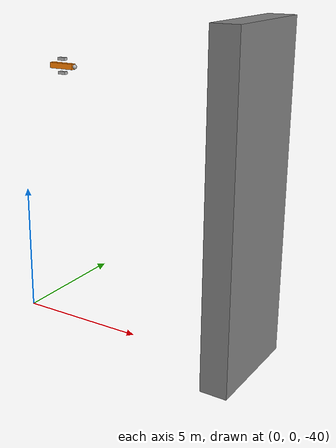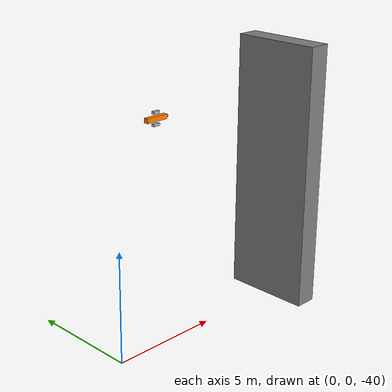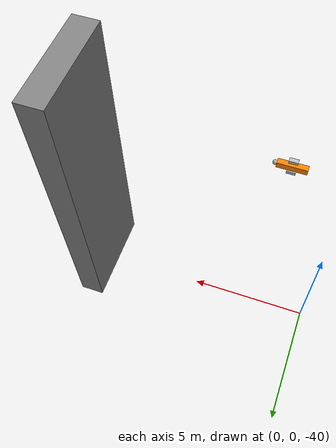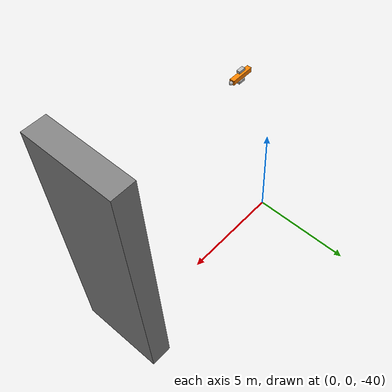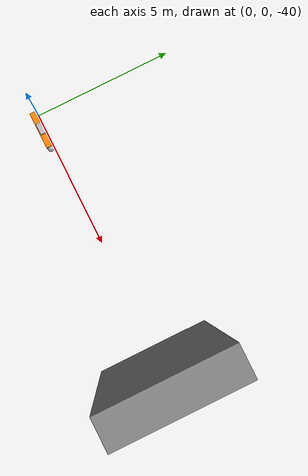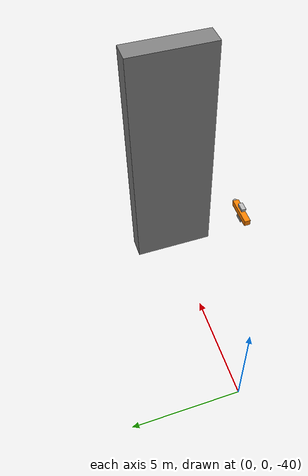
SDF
<sdf version="1.7"><world name="uuv_twin_axial">
<physics name="bench" type="ode"><max_step_size>0.05</max_step_size><real_time_factor>1</real_time_factor></physics>
<spherical_coordinates><surface_model>EARTH_WGS84</surface_model><world_frame_orientation>ENU</world_frame_orientation><latitude_deg>0</latitude_deg><longitude_deg>0</longitude_deg><elevation>0</elevation><heading_deg>0</heading_deg></spherical_coordinates>
<gravity>0 0 0</gravity><scene><ambient>1 1 1</ambient><background>0.15 0.2 0.3</background></scene>
<plugin filename="physics_interface_plugin" name="lotusim::gazebo::PhysicsInterfacePlugin" />
<plugin filename="multi_agent_system_plugin" name="lotusim::gazebo::MultiAgentSystem" />
<plugin filename="gz-sim-scene-broadcaster-system" name="gz::sim::systems::SceneBroadcaster" />
<model name="uuv_twin_axial_v2"><pose>2 0 -30 0 -0.0 0</pose><link name="base_link">
<visual name="body"><geometry><box><size>1 .2 .2</size></box></geometry><material><ambient>1 .5 0 1</ambient></material></visual>
<visual name="nose"><pose>.55 0 0 0 0 0</pose><geometry><sphere><radius>.08</radius></sphere></geometry></visual>
<visual name="upper_thruster"><pose>0 0 .25 0 0 0</pose><geometry><box><size>.3 .15 .1</size></box></geometry></visual>
<visual name="lower_thruster"><pose>0 0 -.25 0 0 0</pose><geometry><box><size>.3 .15 .1</size></box></geometry></visual>
</link><lotus_param><physics_engine_interface><init_state>Underwater</init_state><underwater>
<interface_type>XDynWebSocket</interface_type><uri>ws://127.0.0.1:12356</uri>
<control_surfaces><upper>upper(T)</upper><lower>lower(T)</lower></control_surfaces>
</underwater></physics_engine_interface></lotus_param></model><model name="single_baffle_obstacle"><static>true</static><pose>9.5 0 -34 0 0 0</pose><link name="base_link"><visual name="baffle"><geometry><box><size>1 4 12</size></box></geometry><material><ambient>.5 .5 .5 1</ambient></material></visual><collision name="baffle"><geometry><box><size>1 4 12</size></box></geometry></collision></link></model></world></sdf>
